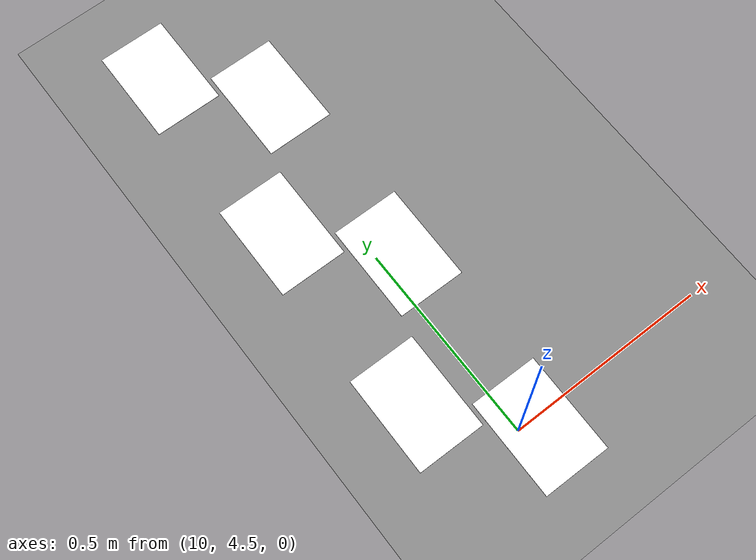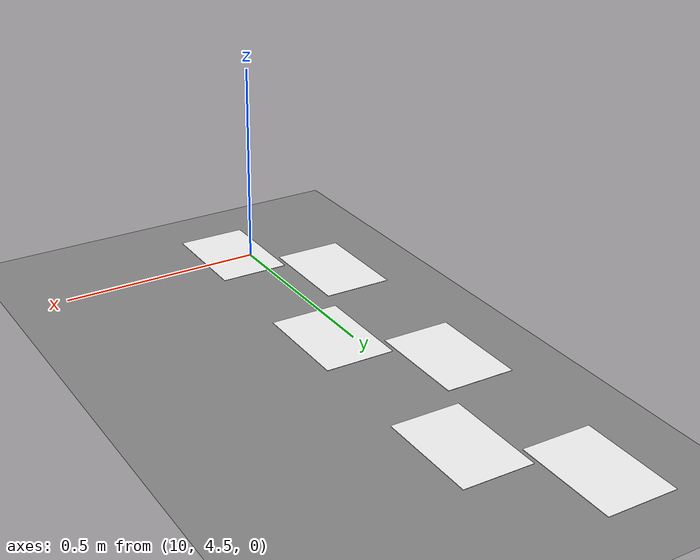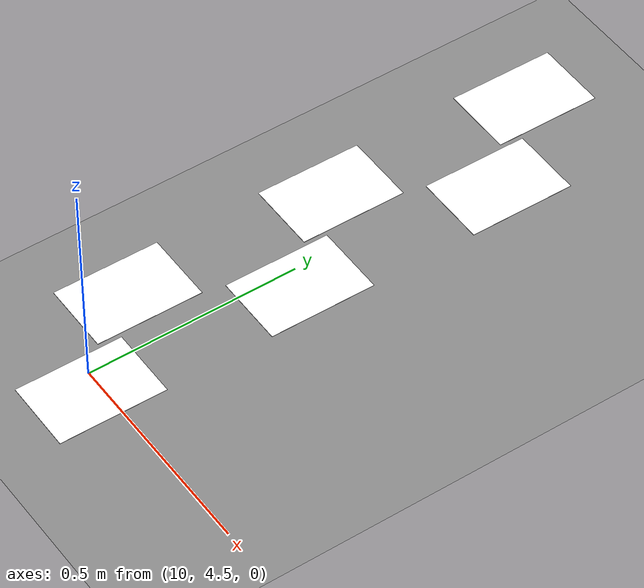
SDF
<sdf version="1.8">
 <world name="it_arena_track">
  <model name="it_arena_track_static">
   <static>true</static>
   <link name="track_geometry_merged">
    <collision name="ground_plane_link__ground_collision">
     <geometry><plane><normal>0 0 1</normal><size>30 30</size></plane></geometry>
    </collision>
    <visual name="ground_plane_link__ground_visual">
     <geometry><plane><normal>0 0 1</normal><size>30 30</size></plane></geometry>
     <material><ambient>0.55 0.55 0.55 1</ambient><diffuse>0.55 0.55 0.55 1</diffuse></material>
    </visual>
    <visual name="grid_slot_0__grid_slot_0_vis">
     <pose>9.8638 4.6804 0.0037 0 0 1.56370</pose>
     <geometry><box><size>0.2500 0.1700 0.001</size></box></geometry>
     <material><ambient>1 1 1 1</ambient><diffuse>1 1 1 1</diffuse></material>
    </visual>
    <visual name="grid_slot_1__grid_slot_1_vis">
     <pose>9.8672 5.1804 0.0037 0 0 1.56370</pose>
     <geometry><box><size>0.2500 0.1700 0.001</size></box></geometry>
     <material><ambient>1 1 1 1</ambient><diffuse>1 1 1 1</diffuse></material>
    </visual>
    <visual name="grid_slot_2__grid_slot_2_vis">
     <pose>9.8707 5.6804 0.0037 0 0 1.56390</pose>
     <geometry><box><size>0.2500 0.1700 0.001</size></box></geometry>
     <material><ambient>1 1 1 1</ambient><diffuse>1 1 1 1</diffuse></material>
    </visual>
    <visual name="grid_slot_3__grid_slot_3_vis">
     <pose>10.0425 4.4792 0.0037 0 0 1.56390</pose>
     <geometry><box><size>0.2500 0.1700 0.001</size></box></geometry>
     <material><ambient>1 1 1 1</ambient><diffuse>1 1 1 1</diffuse></material>
    </visual>
    <visual name="grid_slot_4__grid_slot_4_vis">
     <pose>10.0459 4.9792 0.0037 0 0 1.56390</pose>
     <geometry><box><size>0.2500 0.1700 0.001</size></box></geometry>
     <material><ambient>1 1 1 1</ambient><diffuse>1 1 1 1</diffuse></material>
    </visual>
    <visual name="grid_slot_5__grid_slot_5_vis">
     <pose>10.0493 5.4792 0.0037 0 0 1.56390</pose>
     <geometry><box><size>0.2500 0.1700 0.001</size></box></geometry>
     <material><ambient>1 1 1 1</ambient><diffuse>1 1 1 1</diffuse></material>
    </visual>
   </link>
  </model>
 </world>
</sdf>
